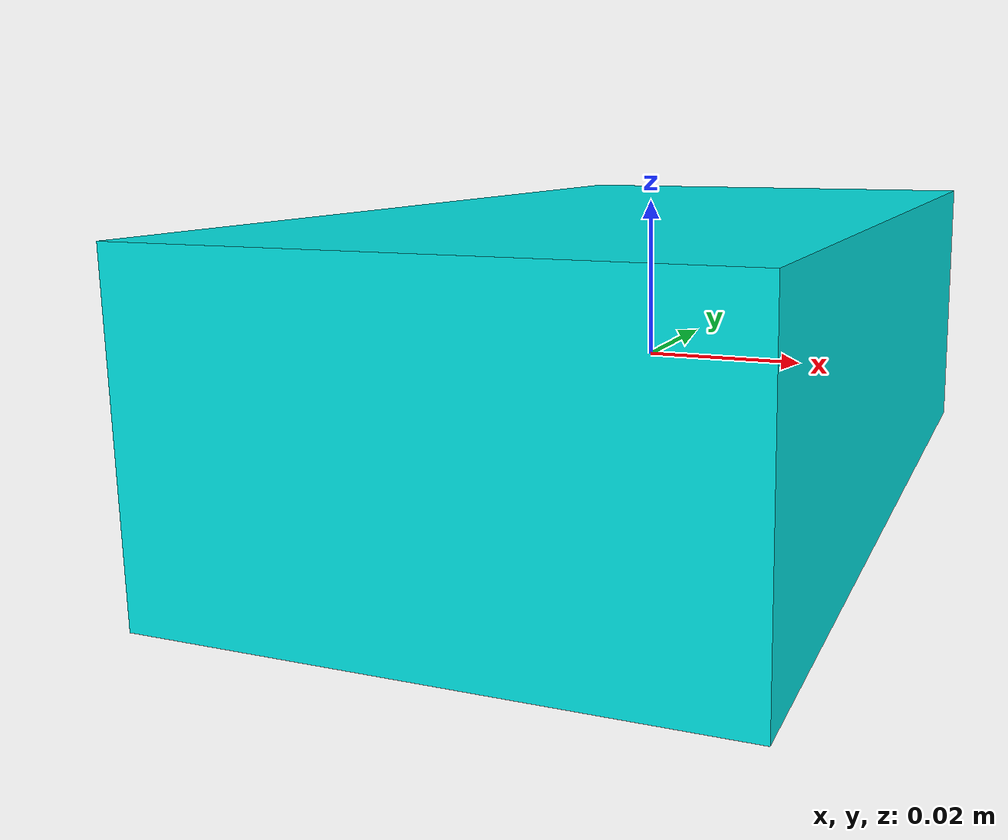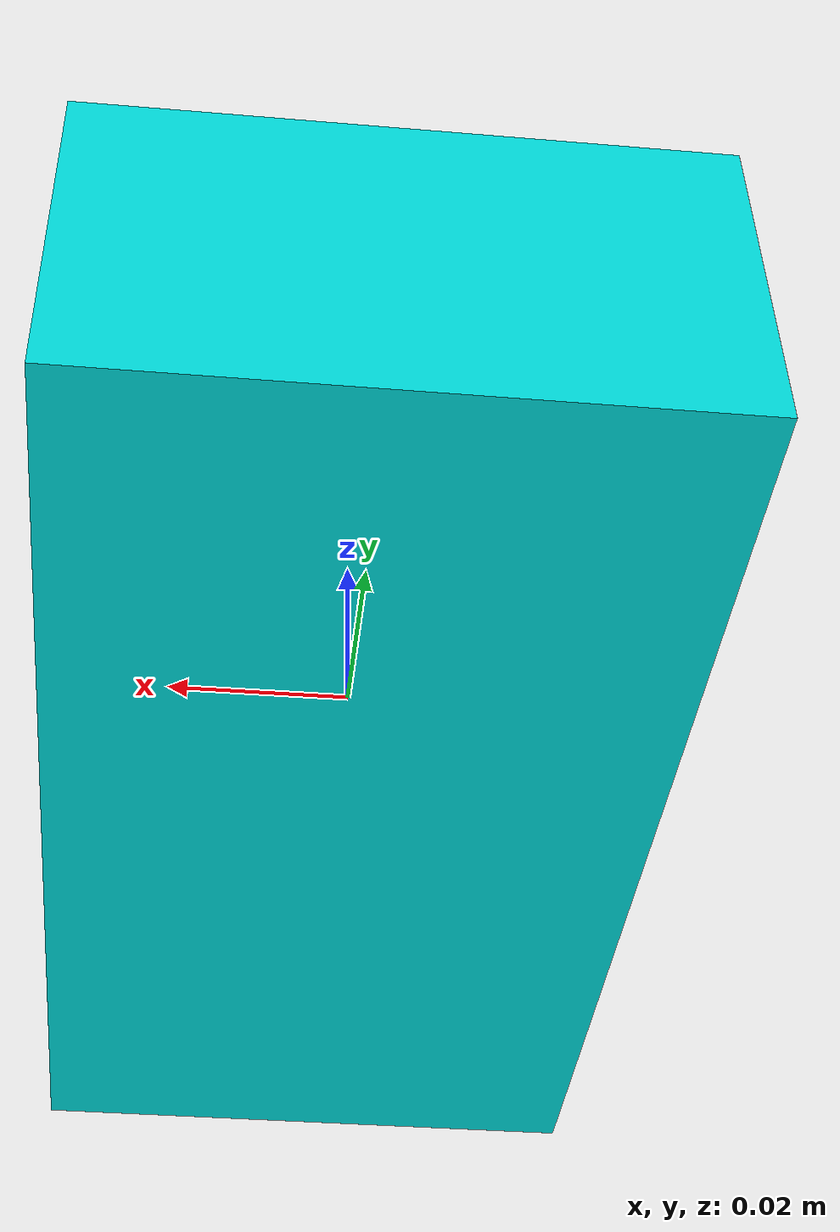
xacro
<?xml version="1.0"?>

<!-- XML namespaces -->
<robot xmlns:sensor="http://playerstage.sourceforge.net/gazebo/xmlschema/#sensor"
       xmlns:controller="http://playerstage.sourceforge.net/gazebo/xmlschema/#controller"
       xmlns:interface="http://playerstage.sourceforge.net/gazebo/xmlschema/#interface"
       xmlns:xacro="http://ros.org/wiki/xacro"
	   name="kinect">

	<xacro:macro name="cyan1">
		<material name="cyan1">
			<color rgba="0 0.9 0.9 1.0"/>
		</material>
	</xacro:macro>

<link name="kinect_link">
  <visual>
    <geometry>
      <box size="0.064 0.121 0.0381" />
    </geometry>
	<xacro:cyan1 />
  </visual>
  <inertial>
      <mass value="0.0001" />
      <origin xyz="0 0 0" />
      <inertia ixx="0.0001" ixy="0.0" ixz="0.0"
               iyy="0.0001" iyz="0.0"
               izz="0.0001" />
  </inertial>
</link>

<joint name="kinect_depth_joint" type="fixed">
  <origin xyz="0 0.028 0" rpy="0 0 0" />
  <parent link="kinect_link" />
  <child link="kinect_depth_frame" />
</joint>

<link name="kinect_depth_frame">
  <inertial>
      <mass value="0.0001" />
      <origin xyz="0 0 0" />
      <inertia ixx="0.0001" ixy="0.0" ixz="0.0"
               iyy="0.0001" iyz="0.0"
               izz="0.0001" />
  </inertial>
</link>

<joint name="depth_optical_joint" type="fixed">
  <origin xyz="0 0 0" rpy="-1.57 0 -1.57" />
  <parent link="kinect_depth_frame" />
  <child link="kinect_depth_optical_frame" />
</joint>

<link name="kinect_depth_optical_frame">
  <inertial>
      <mass value="0.0001" />
      <origin xyz="0 0 0" />
      <inertia ixx="0.0001" ixy="0.0" ixz="0.0"
               iyy="0.0001" iyz="0.0"
               izz="0.0001" />
  </inertial>
</link>

</robot>
